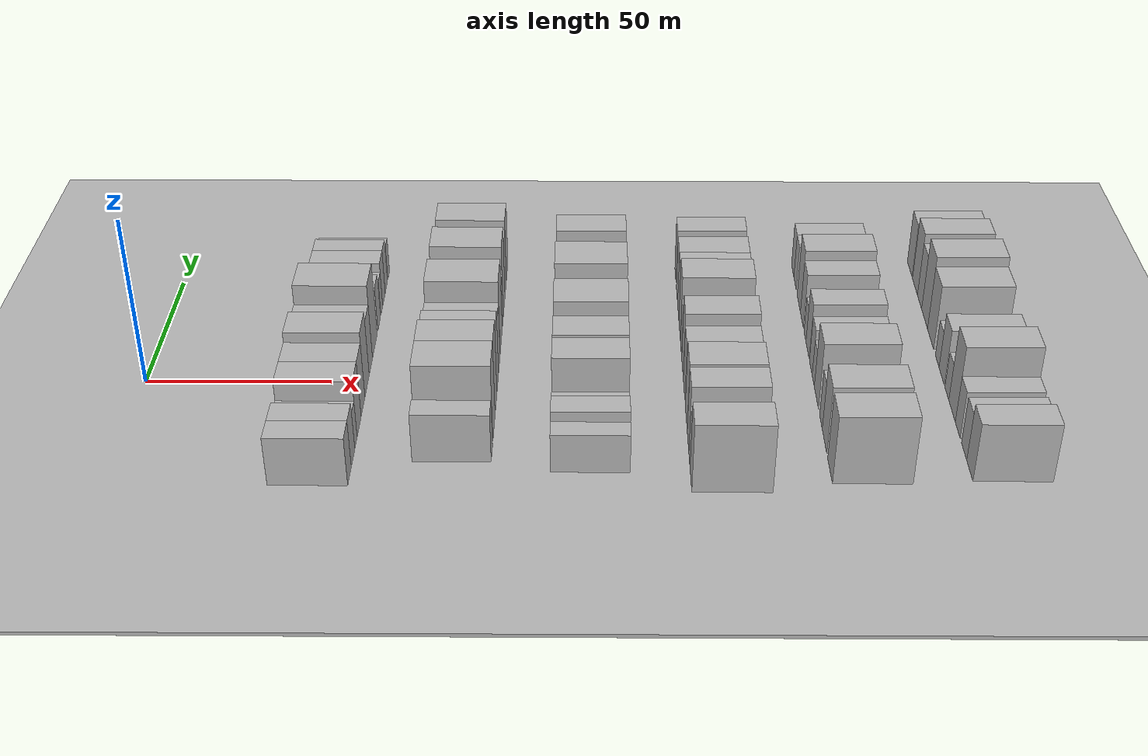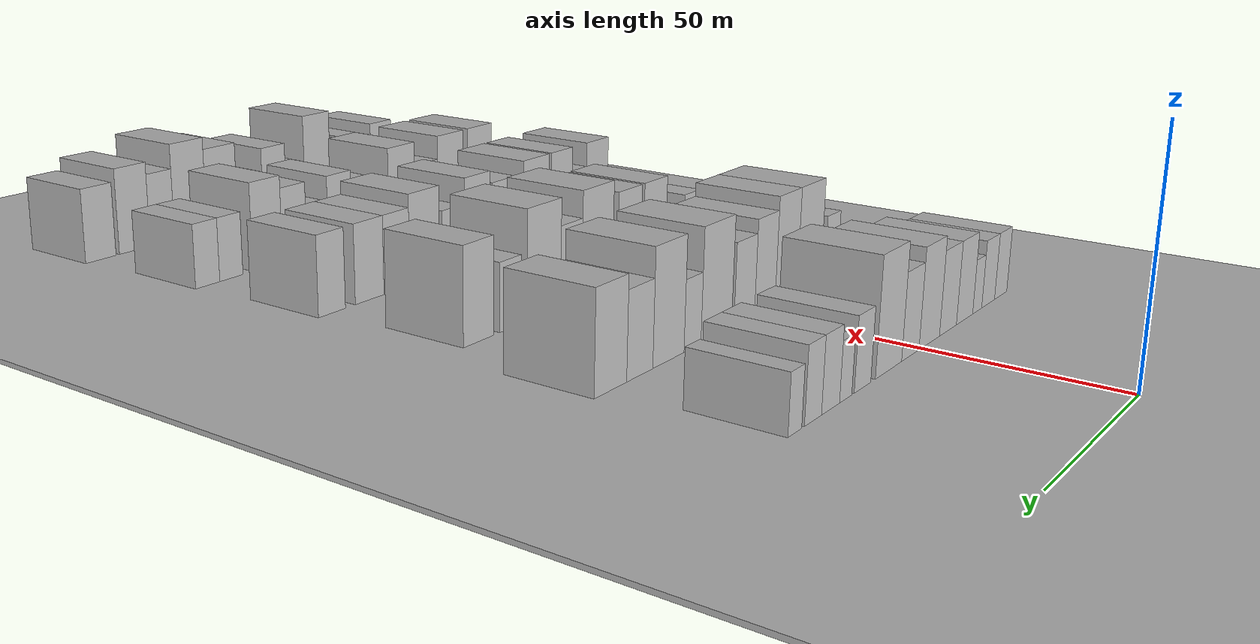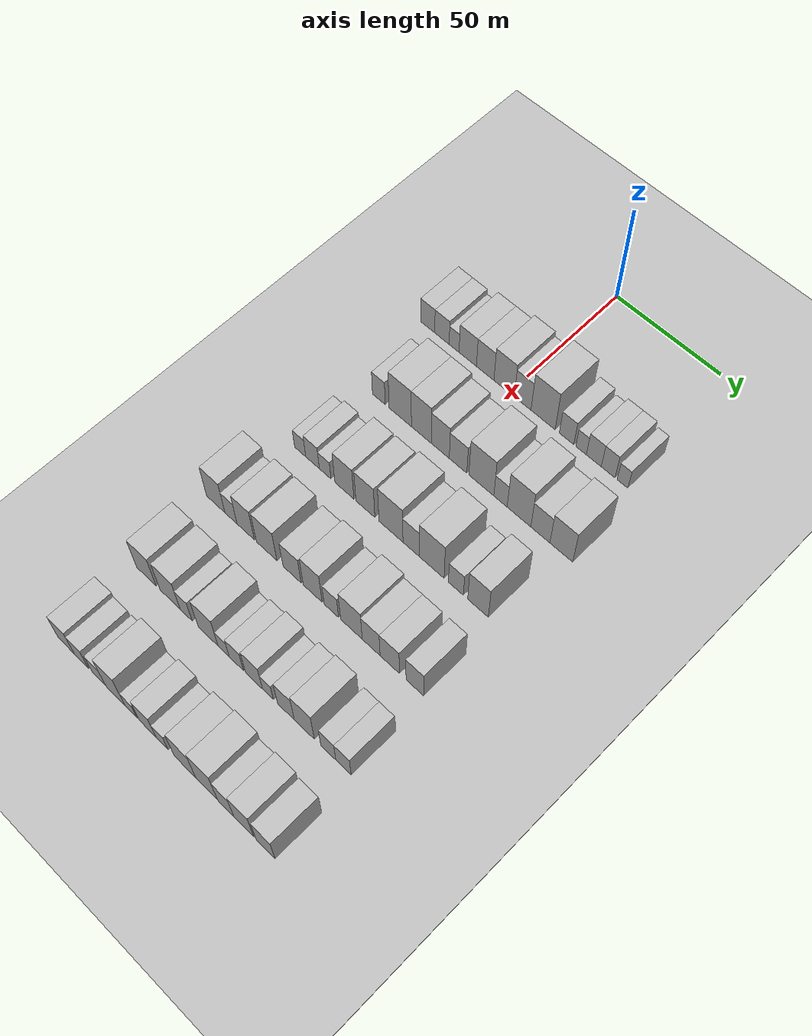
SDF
<sdf version="1.6">
 <world name="default">
  <include><name>ground_plane_1</name><uri>model://HANNAS_ground_plane</uri></include>
  <include>
   <name>ground_plane_2</name>
   <uri>model://HANNAS_ground_plane</uri>
   <pose>100 0 0  0 0 0</pose>
  </include>
  <model name="building_63">
   <static>1</static>
   <pose>50.0000 -41.1256 0 0.000000 0.000000 0.000000</pose>
   <link name="link">
    <pose>0 0 7.50 0 0 0</pose>
    <collision name="collision"><geometry><box><size>20.0000 7.2769 15.0000</size></box></geometry></collision>
    <visual name="visual">
     <cast_shadows>0</cast_shadows>
     <geometry><box><size>20.0000 7.2769 15.0000</size></box></geometry>
     <material>
      <script>
       <uri>model://HANNAS_wall/materials/scripts</uri>
       <uri>model://HANNAS_wall/materials/textures</uri>
       <name>vrc/HANNAS_wall</name>
      </script>
     </material>
    </visual>
   </link>
  </model>
  <model name="building_64">
   <static>1</static>
   <pose>50.0000 -33.7850 0 0.000000 0.000000 0.000000</pose>
   <link name="link">
    <pose>0 0 7.50 0 0 0</pose>
    <collision name="collision"><geometry><box><size>20.0000 7.4044 15.0000</size></box></geometry></collision>
    <visual name="visual">
     <cast_shadows>0</cast_shadows>
     <geometry><box><size>20.0000 7.4044 15.0000</size></box></geometry>
     <material>
      <script>
       <uri>model://HANNAS_wall/materials/scripts</uri>
       <uri>model://HANNAS_wall/materials/textures</uri>
       <name>vrc/HANNAS_wall</name>
      </script>
     </material>
    </visual>
   </link>
  </model>
  <model name="building_65">
   <static>1</static>
   <pose>50.0000 -27.5641 0 0.000000 0.000000 0.000000</pose>
   <link name="link">
    <pose>0 0 6.00 0 0 0</pose>
    <collision name="collision"><geometry><box><size>20.0000 5.0374 12.0000</size></box></geometry></collision>
    <visual name="visual">
     <cast_shadows>0</cast_shadows>
     <geometry><box><size>20.0000 5.0374 12.0000</size></box></geometry>
     <material>
      <script>
       <uri>model://HANNAS_wall/materials/scripts</uri>
       <uri>model://HANNAS_wall/materials/textures</uri>
       <name>vrc/HANNAS_wall</name>
      </script>
     </material>
    </visual>
   </link>
  </model>
  <model name="building_66">
   <static>1</static>
   <pose>50.0000 -20.6608 0 0.000000 0.000000 0.000000</pose>
   <link name="link">
    <pose>0 0 9.00 0 0 0</pose>
    <collision name="collision"><geometry><box><size>20.0000 8.7693 18.0000</size></box></geometry></collision>
    <visual name="visual">
     <cast_shadows>0</cast_shadows>
     <geometry><box><size>20.0000 8.7693 18.0000</size></box></geometry>
     <material>
      <script>
       <uri>model://HANNAS_wall/materials/scripts</uri>
       <uri>model://HANNAS_wall/materials/textures</uri>
       <name>vrc/HANNAS_wall</name>
      </script>
     </material>
    </visual>
   </link>
  </model>
  <model name="building_67">
   <static>1</static>
   <pose>50.0000 -11.9061 0 0.000000 0.000000 0.000000</pose>
   <link name="link">
    <pose>0 0 9.00 0 0 0</pose>
    <collision name="collision"><geometry><box><size>20.0000 8.7401 18.0000</size></box></geometry></collision>
    <visual name="visual">
     <cast_shadows>0</cast_shadows>
     <geometry><box><size>20.0000 8.7401 18.0000</size></box></geometry>
     <material>
      <script>
       <uri>model://HANNAS_wall/materials/scripts</uri>
       <uri>model://HANNAS_wall/materials/textures</uri>
       <name>vrc/HANNAS_wall</name>
      </script>
     </material>
    </visual>
   </link>
  </model>
  <model name="building_68">
   <static>1</static>
   <pose>50.0000 -2.4964 0 0.000000 0.000000 0.000000</pose>
   <link name="link">
    <pose>0 0 10.50 0 0 0</pose>
    <collision name="collision"><geometry><box><size>20.0000 10.0793 21.0000</size></box></geometry></collision>
    <visual name="visual">
     <cast_shadows>0</cast_shadows>
     <geometry><box><size>20.0000 10.0793 21.0000</size></box></geometry>
     <material>
      <script>
       <uri>model://HANNAS_wall/materials/scripts</uri>
       <uri>model://HANNAS_wall/materials/textures</uri>
       <name>vrc/HANNAS_wall</name>
      </script>
     </material>
    </visual>
   </link>
  </model>
  <model name="building_69">
   <static>1</static>
   <pose>50.0000 6.6117 0 0.000000 0.000000 0.000000</pose>
   <link name="link">
    <pose>0 0 9.00 0 0 0</pose>
    <collision name="collision"><geometry><box><size>20.0000 8.1369 18.0000</size></box></geometry></collision>
    <visual name="visual">
     <cast_shadows>0</cast_shadows>
     <geometry><box><size>20.0000 8.1369 18.0000</size></box></geometry>
     <material>
      <script>
       <uri>model://HANNAS_wall/materials/scripts</uri>
       <uri>model://HANNAS_wall/materials/textures</uri>
       <name>vrc/HANNAS_wall</name>
      </script>
     </material>
    </visual>
   </link>
  </model>
  <model name="building_70">
   <static>1</static>
   <pose>50.0000 16.5083 0 0.000000 0.000000 0.000000</pose>
   <link name="link">
    <pose>0 0 12.00 0 0 0</pose>
    <collision name="collision"><geometry><box><size>20.0000 11.6562 24.0000</size></box></geometry></collision>
    <visual name="visual">
     <cast_shadows>0</cast_shadows>
     <geometry><box><size>20.0000 11.6562 24.0000</size></box></geometry>
     <material>
      <script>
       <uri>model://HANNAS_wall/materials/scripts</uri>
       <uri>model://HANNAS_wall/materials/textures</uri>
       <name>vrc/HANNAS_wall</name>
      </script>
     </material>
    </visual>
   </link>
  </model>
  <model name="building_71">
   <static>1</static>
   <pose>50.0000 27.7764 0 0.000000 0.000000 0.000000</pose>
   <link name="link">
    <pose>0 0 7.50 0 0 0</pose>
    <collision name="collision"><geometry><box><size>20.0000 6.8799 15.0000</size></box></geometry></collision>
    <visual name="visual">
     <cast_shadows>0</cast_shadows>
     <geometry><box><size>20.0000 6.8799 15.0000</size></box></geometry>
     <material>
      <script>
       <uri>model://HANNAS_wall/materials/scripts</uri>
       <uri>model://HANNAS_wall/materials/textures</uri>
       <name>vrc/HANNAS_wall</name>
      </script>
     </material>
    </visual>
   </link>
  </model>
  <model name="building_72">
   <static>1</static>
   <pose>50.0000 34.6715 0 0.000000 0.000000 0.000000</pose>
   <link name="link">
    <pose>0 0 6.00 0 0 0</pose>
    <collision name="collision"><geometry><box><size>20.0000 4.9103 12.0000</size></box></geometry></collision>
    <visual name="visual">
     <cast_shadows>0</cast_shadows>
     <geometry><box><size>20.0000 4.9103 12.0000</size></box></geometry>
     <material>
      <script>
       <uri>model://HANNAS_wall/materials/scripts</uri>
       <uri>model://HANNAS_wall/materials/textures</uri>
       <name>vrc/HANNAS_wall</name>
      </script>
     </material>
    </visual>
   </link>
  </model>
  <model name="building_73">
   <static>1</static>
   <pose>50.0000 40.6219 0 0.000000 0.000000 0.000000</pose>
   <link name="link">
    <pose>0 0 7.50 0 0 0</pose>
    <collision name="collision"><geometry><box><size>20.0000 6.9905 15.0000</size></box></geometry></collision>
    <visual name="visual">
     <cast_shadows>0</cast_shadows>
     <geometry><box><size>20.0000 6.9905 15.0000</size></box></geometry>
     <material>
      <script>
       <uri>model://HANNAS_wall/materials/scripts</uri>
       <uri>model://HANNAS_wall/materials/textures</uri>
       <name>vrc/HANNAS_wall</name>
      </script>
     </material>
    </visual>
   </link>
  </model>
  <model name="building_74">
   <static>1</static>
   <pose>50.0000 47.2921 0 0.000000 0.000000 0.000000</pose>
   <link name="link">
    <pose>0 0 7.50 0 0 0</pose>
    <collision name="collision"><geometry><box><size>20.0000 6.3498 15.0000</size></box></geometry></collision>
    <visual name="visual">
     <cast_shadows>0</cast_shadows>
     <geometry><box><size>20.0000 6.3498 15.0000</size></box></geometry>
     <material>
      <script>
       <uri>model://HANNAS_wall/materials/scripts</uri>
       <uri>model://HANNAS_wall/materials/textures</uri>
       <name>vrc/HANNAS_wall</name>
      </script>
     </material>
    </visual>
   </link>
  </model>
  <model name="building_75">
   <static>1</static>
   <pose>50.0000 53.9406 0 0.000000 0.000000 0.000000</pose>
   <link name="link">
    <pose>0 0 6.00 0 0 0</pose>
    <collision name="collision"><geometry><box><size>20.0000 4.9472 12.0000</size></box></geometry></collision>
    <visual name="visual">
     <cast_shadows>0</cast_shadows>
     <geometry><box><size>20.0000 4.9472 12.0000</size></box></geometry>
     <material>
      <script>
       <uri>model://HANNAS_wall/materials/scripts</uri>
       <uri>model://HANNAS_wall/materials/textures</uri>
       <name>vrc/HANNAS_wall</name>
      </script>
     </material>
    </visual>
   </link>
  </model>
  <model name="building_196">
   <static>1</static>
   <pose>85.0000 -31.8181 0 0.000000 0.000000 0.000000</pose>
   <link name="link">
    <pose>0 0 7.50 0 0 0</pose>
    <collision name="collision"><geometry><box><size>20.0000 6.4672 15.0000</size></box></geometry></collision>
    <visual name="visual">
     <cast_shadows>0</cast_shadows>
     <geometry><box><size>20.0000 6.4672 15.0000</size></box></geometry>
     <material>
      <script>
       <uri>model://HANNAS_wall/materials/scripts</uri>
       <uri>model://HANNAS_wall/materials/textures</uri>
       <name>vrc/HANNAS_wall</name>
      </script>
     </material>
    </visual>
   </link>
  </model>
  <model name="building_197">
   <static>1</static>
   <pose>85.0000 -20.9600 0 0.000000 0.000000 0.000000</pose>
   <link name="link">
    <pose>0 0 12.00 0 0 0</pose>
    <collision name="collision"><geometry><box><size>20.0000 11.2489 24.0000</size></box></geometry></collision>
    <visual name="visual">
     <cast_shadows>0</cast_shadows>
     <geometry><box><size>20.0000 11.2489 24.0000</size></box></geometry>
     <material>
      <script>
       <uri>model://HANNAS_wall/materials/scripts</uri>
       <uri>model://HANNAS_wall/materials/textures</uri>
       <name>vrc/HANNAS_wall</name>
      </script>
     </material>
    </visual>
   </link>
  </model>
  <model name="building_198">
   <static>1</static>
   <pose>85.0000 -10.3978 0 0.000000 0.000000 0.000000</pose>
   <link name="link">
    <pose>0 0 12.00 0 0 0</pose>
    <collision name="collision"><geometry><box><size>20.0000 9.8755 24.0000</size></box></geometry></collision>
    <visual name="visual">
     <cast_shadows>0</cast_shadows>
     <geometry><box><size>20.0000 9.8755 24.0000</size></box></geometry>
     <material>
      <script>
       <uri>model://HANNAS_wall/materials/scripts</uri>
       <uri>model://HANNAS_wall/materials/textures</uri>
       <name>vrc/HANNAS_wall</name>
      </script>
     </material>
    </visual>
   </link>
  </model>
  <model name="building_199">
   <static>1</static>
   <pose>85.0000 -1.0228 0 0.000000 0.000000 0.000000</pose>
   <link name="link">
    <pose>0 0 10.50 0 0 0</pose>
    <collision name="collision"><geometry><box><size>20.0000 8.8744 21.0000</size></box></geometry></collision>
    <visual name="visual">
     <cast_shadows>0</cast_shadows>
     <geometry><box><size>20.0000 8.8744 21.0000</size></box></geometry>
     <material>
      <script>
       <uri>model://HANNAS_wall/materials/scripts</uri>
       <uri>model://HANNAS_wall/materials/textures</uri>
       <name>vrc/HANNAS_wall</name>
      </script>
     </material>
    </visual>
   </link>
  </model>
  <model name="building_200">
   <static>1</static>
   <pose>85.0000 7.6800 0 0.000000 0.000000 0.000000</pose>
   <link name="link">
    <pose>0 0 9.00 0 0 0</pose>
    <collision name="collision"><geometry><box><size>20.0000 8.5313 18.0000</size></box></geometry></collision>
    <visual name="visual">
     <cast_shadows>0</cast_shadows>
     <geometry><box><size>20.0000 8.5313 18.0000</size></box></geometry>
     <material>
      <script>
       <uri>model://HANNAS_wall/materials/scripts</uri>
       <uri>model://HANNAS_wall/materials/textures</uri>
       <name>vrc/HANNAS_wall</name>
      </script>
     </material>
    </visual>
   </link>
  </model>
  <model name="building_201">
   <static>1</static>
   <pose>85.0000 18.9229 0 0.000000 0.000000 0.000000</pose>
   <link name="link">
    <pose>0 0 12.00 0 0 0</pose>
    <collision name="collision"><geometry><box><size>20.0000 11.9546 24.0000</size></box></geometry></collision>
    <visual name="visual">
     <cast_shadows>0</cast_shadows>
     <geometry><box><size>20.0000 11.9546 24.0000</size></box></geometry>
     <material>
      <script>
       <uri>model://HANNAS_wall/materials/scripts</uri>
       <uri>model://HANNAS_wall/materials/textures</uri>
       <name>vrc/HANNAS_wall</name>
      </script>
     </material>
    </visual>
   </link>
  </model>
  <model name="building_202">
   <static>1</static>
   <pose>85.0000 28.0525 0 0.000000 0.000000 0.000000</pose>
   <link name="link">
    <pose>0 0 7.50 0 0 0</pose>
    <collision name="collision"><geometry><box><size>20.0000 6.3044 15.0000</size></box></geometry></collision>
    <visual name="visual">
     <cast_shadows>0</cast_shadows>
     <geometry><box><size>20.0000 6.3044 15.0000</size></box></geometry>
     <material>
      <script>
       <uri>model://HANNAS_wall/materials/scripts</uri>
       <uri>model://HANNAS_wall/materials/textures</uri>
       <name>vrc/HANNAS_wall</name>
      </script>
     </material>
    </visual>
   </link>
  </model>
  <model name="building_203">
   <static>1</static>
   <pose>85.0000 36.7662 0 0.000000 0.000000 0.000000</pose>
   <link name="link">
    <pose>0 0 12.00 0 0 0</pose>
    <collision name="collision"><geometry><box><size>20.0000 11.1231 24.0000</size></box></geometry></collision>
    <visual name="visual">
     <cast_shadows>0</cast_shadows>
     <geometry><box><size>20.0000 11.1231 24.0000</size></box></geometry>
     <material>
      <script>
       <uri>model://HANNAS_wall/materials/scripts</uri>
       <uri>model://HANNAS_wall/materials/textures</uri>
       <name>vrc/HANNAS_wall</name>
      </script>
     </material>
    </visual>
   </link>
  </model>
  <model name="building_204">
   <static>1</static>
   <pose>85.0000 46.7369 0 0.000000 0.000000 0.000000</pose>
   <link name="link">
    <pose>0 0 9.00 0 0 0</pose>
    <collision name="collision"><geometry><box><size>20.0000 8.8182 18.0000</size></box></geometry></collision>
    <visual name="visual">
     <cast_shadows>0</cast_shadows>
     <geometry><box><size>20.0000 8.8182 18.0000</size></box></geometry>
     <material>
      <script>
       <uri>model://HANNAS_wall/materials/scripts</uri>
       <uri>model://HANNAS_wall/materials/textures</uri>
       <name>vrc/HANNAS_wall</name>
      </script>
     </material>
    </visual>
   </link>
  </model>
  <model name="building_205">
   <static>1</static>
   <pose>85.0000 56.3601 0 0.000000 0.000000 0.000000</pose>
   <link name="link">
    <pose>0 0 10.50 0 0 0</pose>
    <collision name="collision"><geometry><box><size>20.0000 10.4281 21.0000</size></box></geometry></collision>
    <visual name="visual">
     <cast_shadows>0</cast_shadows>
     <geometry><box><size>20.0000 10.4281 21.0000</size></box></geometry>
     <material>
      <script>
       <uri>model://HANNAS_wall/materials/scripts</uri>
       <uri>model://HANNAS_wall/materials/textures</uri>
       <name>vrc/HANNAS_wall</name>
      </script>
     </material>
    </visual>
   </link>
  </model>
  <model name="building_306">
   <static>1</static>
   <pose>120.0000 -36.2593 0 0.000000 0.000000 0.000000</pose>
   <link name="link">
    <pose>0 0 6.00 0 0 0</pose>
    <collision name="collision"><geometry><box><size>20.0000 5.6819 12.0000</size></box></geometry></collision>
    <visual name="visual">
     <cast_shadows>0</cast_shadows>
     <geometry><box><size>20.0000 5.6819 12.0000</size></box></geometry>
     <material>
      <script>
       <uri>model://HANNAS_wall/materials/scripts</uri>
       <uri>model://HANNAS_wall/materials/textures</uri>
       <name>vrc/HANNAS_wall</name>
      </script>
     </material>
    </visual>
   </link>
  </model>
  <model name="building_307">
   <static>1</static>
   <pose>120.0000 -29.9218 0 0.000000 0.000000 0.000000</pose>
   <link name="link">
    <pose>0 0 7.50 0 0 0</pose>
    <collision name="collision"><geometry><box><size>20.0000 6.9931 15.0000</size></box></geometry></collision>
    <visual name="visual">
     <cast_shadows>0</cast_shadows>
     <geometry><box><size>20.0000 6.9931 15.0000</size></box></geometry>
     <material>
      <script>
       <uri>model://HANNAS_wall/materials/scripts</uri>
       <uri>model://HANNAS_wall/materials/textures</uri>
       <name>vrc/HANNAS_wall</name>
      </script>
     </material>
    </visual>
   </link>
  </model>
  <model name="building_308">
   <static>1</static>
   <pose>120.0000 -23.4989 0 0.000000 0.000000 0.000000</pose>
   <link name="link">
    <pose>0 0 6.00 0 0 0</pose>
    <collision name="collision"><geometry><box><size>20.0000 5.8526 12.0000</size></box></geometry></collision>
    <visual name="visual">
     <cast_shadows>0</cast_shadows>
     <geometry><box><size>20.0000 5.8526 12.0000</size></box></geometry>
     <material>
      <script>
       <uri>model://HANNAS_wall/materials/scripts</uri>
       <uri>model://HANNAS_wall/materials/textures</uri>
       <name>vrc/HANNAS_wall</name>
      </script>
     </material>
    </visual>
   </link>
  </model>
  <model name="building_309">
   <static>1</static>
   <pose>120.0000 -13.8262 0 0.000000 0.000000 0.000000</pose>
   <link name="link">
    <pose>0 0 10.50 0 0 0</pose>
    <collision name="collision"><geometry><box><size>20.0000 9.4929 21.0000</size></box></geometry></collision>
    <visual name="visual">
     <cast_shadows>0</cast_shadows>
     <geometry><box><size>20.0000 9.4929 21.0000</size></box></geometry>
     <material>
      <script>
       <uri>model://HANNAS_wall/materials/scripts</uri>
       <uri>model://HANNAS_wall/materials/textures</uri>
       <name>vrc/HANNAS_wall</name>
      </script>
     </material>
    </visual>
   </link>
  </model>
  <model name="building_310">
   <static>1</static>
   <pose>120.0000 -3.4148 0 0.000000 0.000000 0.000000</pose>
   <link name="link">
    <pose>0 0 10.50 0 0 0</pose>
    <collision name="collision"><geometry><box><size>20.0000 9.3299 21.0000</size></box></geometry></collision>
    <visual name="visual">
     <cast_shadows>0</cast_shadows>
     <geometry><box><size>20.0000 9.3299 21.0000</size></box></geometry>
     <material>
      <script>
       <uri>model://HANNAS_wall/materials/scripts</uri>
       <uri>model://HANNAS_wall/materials/textures</uri>
       <name>vrc/HANNAS_wall</name>
      </script>
     </material>
    </visual>
   </link>
  </model>
  <model name="building_311">
   <static>1</static>
   <pose>120.0000 9.0783 0 0.000000 0.000000 0.000000</pose>
   <link name="link">
    <pose>0 0 12.00 0 0 0</pose>
    <collision name="collision"><geometry><box><size>20.0000 11.6563 24.0000</size></box></geometry></collision>
    <visual name="visual">
     <cast_shadows>0</cast_shadows>
     <geometry><box><size>20.0000 11.6563 24.0000</size></box></geometry>
     <material>
      <script>
       <uri>model://HANNAS_wall/materials/scripts</uri>
       <uri>model://HANNAS_wall/materials/textures</uri>
       <name>vrc/HANNAS_wall</name>
      </script>
     </material>
    </visual>
   </link>
  </model>
  <model name="building_312">
   <static>1</static>
   <pose>120.0000 18.7878 0 0.000000 0.000000 0.000000</pose>
   <link name="link">
    <pose>0 0 9.00 0 0 0</pose>
    <collision name="collision"><geometry><box><size>20.0000 7.7627 18.0000</size></box></geometry></collision>
    <visual name="visual">
     <cast_shadows>0</cast_shadows>
     <geometry><box><size>20.0000 7.7627 18.0000</size></box></geometry>
     <material>
      <script>
       <uri>model://HANNAS_wall/materials/scripts</uri>
       <uri>model://HANNAS_wall/materials/textures</uri>
       <name>vrc/HANNAS_wall</name>
      </script>
     </material>
    </visual>
   </link>
  </model>
  <model name="building_313">
   <static>1</static>
   <pose>120.0000 28.5549 0 0.000000 0.000000 0.000000</pose>
   <link name="link">
    <pose>0 0 12.00 0 0 0</pose>
    <collision name="collision"><geometry><box><size>20.0000 11.7715 24.0000</size></box></geometry></collision>
    <visual name="visual">
     <cast_shadows>0</cast_shadows>
     <geometry><box><size>20.0000 11.7715 24.0000</size></box></geometry>
     <material>
      <script>
       <uri>model://HANNAS_wall/materials/scripts</uri>
       <uri>model://HANNAS_wall/materials/textures</uri>
       <name>vrc/HANNAS_wall</name>
      </script>
     </material>
    </visual>
   </link>
  </model>
  <model name="building_314">
   <static>1</static>
   <pose>120.0000 39.9270 0 0.000000 0.000000 0.000000</pose>
   <link name="link">
    <pose>0 0 7.50 0 0 0</pose>
    <collision name="collision"><geometry><box><size>20.0000 6.9727 15.0000</size></box></geometry></collision>
    <visual name="visual">
     <cast_shadows>0</cast_shadows>
     <geometry><box><size>20.0000 6.9727 15.0000</size></box></geometry>
     <material>
      <script>
       <uri>model://HANNAS_wall/materials/scripts</uri>
       <uri>model://HANNAS_wall/materials/textures</uri>
       <name>vrc/HANNAS_wall</name>
      </script>
     </material>
    </visual>
   </link>
  </model>
  <model name="building_315">
   <static>1</static>
   <pose>120.0000 50.1414 0 0.000000 0.000000 0.000000</pose>
   <link name="link">
    <pose>0 0 10.50 0 0 0</pose>
    <collision name="collision"><geometry><box><size>20.0000 9.4560 21.0000</size></box></geometry></collision>
    <visual name="visual">
     <cast_shadows>0</cast_shadows>
     <geometry><box><size>20.0000 9.4560 21.0000</size></box></geometry>
     <material>
      <script>
       <uri>model://HANNAS_wall/materials/scripts</uri>
       <uri>model://HANNAS_wall/materials/textures</uri>
       <name>vrc/HANNAS_wall</name>
      </script>
     </material>
    </visual>
   </link>
  </model>
  <model name="building_427">
   <static>1</static>
   <pose>155.0000 -42.0144 0 0.000000 0.000000 0.000000</pose>
   <link name="link">
    <pose>0 0 10.50 0 0 0</pose>
    <collision name="collision"><geometry><box><size>20.0000 9.5066 21.0000</size></box></geometry></collision>
    <visual name="visual">
     <cast_shadows>0</cast_shadows>
     <geometry><box><size>20.0000 9.5066 21.0000</size></box></geometry>
     <material>
      <script>
       <uri>model://HANNAS_wall/materials/scripts</uri>
       <uri>model://HANNAS_wall/materials/textures</uri>
       <name>vrc/HANNAS_wall</name>
      </script>
     </material>
    </visual>
   </link>
  </model>
  <model name="building_428">
   <static>1</static>
   <pose>155.0000 -34.1375 0 0.000000 0.000000 0.000000</pose>
   <link name="link">
    <pose>0 0 7.50 0 0 0</pose>
    <collision name="collision"><geometry><box><size>20.0000 6.2473 15.0000</size></box></geometry></collision>
    <visual name="visual">
     <cast_shadows>0</cast_shadows>
     <geometry><box><size>20.0000 6.2473 15.0000</size></box></geometry>
     <material>
      <script>
       <uri>model://HANNAS_wall/materials/scripts</uri>
       <uri>model://HANNAS_wall/materials/textures</uri>
       <name>vrc/HANNAS_wall</name>
      </script>
     </material>
    </visual>
   </link>
  </model>
  <model name="building_429">
   <static>1</static>
   <pose>155.0000 -26.5983 0 0.000000 0.000000 0.000000</pose>
   <link name="link">
    <pose>0 0 10.50 0 0 0</pose>
    <collision name="collision"><geometry><box><size>20.0000 8.8310 21.0000</size></box></geometry></collision>
    <visual name="visual">
     <cast_shadows>0</cast_shadows>
     <geometry><box><size>20.0000 8.8310 21.0000</size></box></geometry>
     <material>
      <script>
       <uri>model://HANNAS_wall/materials/scripts</uri>
       <uri>model://HANNAS_wall/materials/textures</uri>
       <name>vrc/HANNAS_wall</name>
      </script>
     </material>
    </visual>
   </link>
  </model>
  <model name="building_430">
   <static>1</static>
   <pose>155.0000 -16.0215 0 0.000000 0.000000 0.000000</pose>
   <link name="link">
    <pose>0 0 10.50 0 0 0</pose>
    <collision name="collision"><geometry><box><size>20.0000 10.3224 21.0000</size></box></geometry></collision>
    <visual name="visual">
     <cast_shadows>0</cast_shadows>
     <geometry><box><size>20.0000 10.3224 21.0000</size></box></geometry>
     <material>
      <script>
       <uri>model://HANNAS_wall/materials/scripts</uri>
       <uri>model://HANNAS_wall/materials/textures</uri>
       <name>vrc/HANNAS_wall</name>
      </script>
     </material>
    </visual>
   </link>
  </model>
  <model name="building_431">
   <static>1</static>
   <pose>155.0000 -3.3795 0 0.000000 0.000000 0.000000</pose>
   <link name="link">
    <pose>0 0 9.00 0 0 0</pose>
    <collision name="collision"><geometry><box><size>20.0000 8.9617 18.0000</size></box></geometry></collision>
    <visual name="visual">
     <cast_shadows>0</cast_shadows>
     <geometry><box><size>20.0000 8.9617 18.0000</size></box></geometry>
     <material>
      <script>
       <uri>model://HANNAS_wall/materials/scripts</uri>
       <uri>model://HANNAS_wall/materials/textures</uri>
       <name>vrc/HANNAS_wall</name>
      </script>
     </material>
    </visual>
   </link>
  </model>
  <model name="building_432">
   <static>1</static>
   <pose>155.0000 6.6852 0 0.000000 0.000000 0.000000</pose>
   <link name="link">
    <pose>0 0 10.50 0 0 0</pose>
    <collision name="collision"><geometry><box><size>20.0000 9.1678 21.0000</size></box></geometry></collision>
    <visual name="visual">
     <cast_shadows>0</cast_shadows>
     <geometry><box><size>20.0000 9.1678 21.0000</size></box></geometry>
     <material>
      <script>
       <uri>model://HANNAS_wall/materials/scripts</uri>
       <uri>model://HANNAS_wall/materials/textures</uri>
       <name>vrc/HANNAS_wall</name>
      </script>
     </material>
    </visual>
   </link>
  </model>
  <model name="building_433">
   <static>1</static>
   <pose>155.0000 15.7354 0 0.000000 0.000000 0.000000</pose>
   <link name="link">
    <pose>0 0 7.50 0 0 0</pose>
    <collision name="collision"><geometry><box><size>20.0000 6.9326 15.0000</size></box></geometry></collision>
    <visual name="visual">
     <cast_shadows>0</cast_shadows>
     <geometry><box><size>20.0000 6.9326 15.0000</size></box></geometry>
     <material>
      <script>
       <uri>model://HANNAS_wall/materials/scripts</uri>
       <uri>model://HANNAS_wall/materials/textures</uri>
       <name>vrc/HANNAS_wall</name>
      </script>
     </material>
    </visual>
   </link>
  </model>
  <model name="building_434">
   <static>1</static>
   <pose>155.0000 25.3060 0 0.000000 0.000000 0.000000</pose>
   <link name="link">
    <pose>0 0 10.50 0 0 0</pose>
    <collision name="collision"><geometry><box><size>20.0000 10.2085 21.0000</size></box></geometry></collision>
    <visual name="visual">
     <cast_shadows>0</cast_shadows>
     <geometry><box><size>20.0000 10.2085 21.0000</size></box></geometry>
     <material>
      <script>
       <uri>model://HANNAS_wall/materials/scripts</uri>
       <uri>model://HANNAS_wall/materials/textures</uri>
       <name>vrc/HANNAS_wall</name>
      </script>
     </material>
    </visual>
   </link>
  </model>
  <model name="building_435">
   <static>1</static>
   <pose>155.0000 34.6015 0 0.000000 0.000000 0.000000</pose>
   <link name="link">
    <pose>0 0 9.00 0 0 0</pose>
    <collision name="collision"><geometry><box><size>20.0000 8.3826 18.0000</size></box></geometry></collision>
    <visual name="visual">
     <cast_shadows>0</cast_shadows>
     <geometry><box><size>20.0000 8.3826 18.0000</size></box></geometry>
     <material>
      <script>
       <uri>model://HANNAS_wall/materials/scripts</uri>
       <uri>model://HANNAS_wall/materials/textures</uri>
       <name>vrc/HANNAS_wall</name>
      </script>
     </material>
    </visual>
   </link>
  </model>
  <model name="building_436">
   <static>1</static>
   <pose>155.0000 43.2703 0 0.000000 0.000000 0.000000</pose>
   <link name="link">
    <pose>0 0 9.00 0 0 0</pose>
    <collision name="collision"><geometry><box><size>20.0000 8.9550 18.0000</size></box></geometry></collision>
    <visual name="visual">
     <cast_shadows>0</cast_shadows>
     <geometry><box><size>20.0000 8.9550 18.0000</size></box></geometry>
     <material>
      <script>
       <uri>model://HANNAS_wall/materials/scripts</uri>
       <uri>model://HANNAS_wall/materials/textures</uri>
       <name>vrc/HANNAS_wall</name>
      </script>
     </material>
    </visual>
   </link>
  </model>
  <model name="building_437">
   <static>1</static>
   <pose>155.0000 54.7390 0 0.000000 0.000000 0.000000</pose>
   <link name="link">
    <pose>0 0 9.00 0 0 0</pose>
    <collision name="collision"><geometry><box><size>20.0000 7.9823 18.0000</size></box></geometry></collision>
    <visual name="visual">
     <cast_shadows>0</cast_shadows>
     <geometry><box><size>20.0000 7.9823 18.0000</size></box></geometry>
     <material>
      <script>
       <uri>model://HANNAS_wall/materials/scripts</uri>
       <uri>model://HANNAS_wall/materials/textures</uri>
       <name>vrc/HANNAS_wall</name>
      </script>
     </material>
    </visual>
   </link>
  </model>
  <model name="building_545">
   <static>1</static>
   <pose>190.0000 -38.1544 0 0.000000 0.000000 0.000000</pose>
   <link name="link">
    <pose>0 0 10.50 0 0 0</pose>
    <collision name="collision"><geometry><box><size>20.0000 10.1459 21.0000</size></box></geometry></collision>
    <visual name="visual">
     <cast_shadows>0</cast_shadows>
     <geometry><box><size>20.0000 10.1459 21.0000</size></box></geometry>
     <material>
      <script>
       <uri>model://HANNAS_wall/materials/scripts</uri>
       <uri>model://HANNAS_wall/materials/textures</uri>
       <name>vrc/HANNAS_wall</name>
      </script>
     </material>
    </visual>
   </link>
  </model>
  <model name="building_546">
   <static>1</static>
   <pose>190.0000 -25.9553 0 0.000000 0.000000 0.000000</pose>
   <link name="link">
    <pose>0 0 10.50 0 0 0</pose>
    <collision name="collision"><geometry><box><size>20.0000 10.2524 21.0000</size></box></geometry></collision>
    <visual name="visual">
     <cast_shadows>0</cast_shadows>
     <geometry><box><size>20.0000 10.2524 21.0000</size></box></geometry>
     <material>
      <script>
       <uri>model://HANNAS_wall/materials/scripts</uri>
       <uri>model://HANNAS_wall/materials/textures</uri>
       <name>vrc/HANNAS_wall</name>
      </script>
     </material>
    </visual>
   </link>
  </model>
  <model name="building_547">
   <static>1</static>
   <pose>190.0000 -17.8192 0 0.000000 0.000000 0.000000</pose>
   <link name="link">
    <pose>0 0 7.50 0 0 0</pose>
    <collision name="collision"><geometry><box><size>20.0000 6.0199 15.0000</size></box></geometry></collision>
    <visual name="visual">
     <cast_shadows>0</cast_shadows>
     <geometry><box><size>20.0000 6.0199 15.0000</size></box></geometry>
     <material>
      <script>
       <uri>model://HANNAS_wall/materials/scripts</uri>
       <uri>model://HANNAS_wall/materials/textures</uri>
       <name>vrc/HANNAS_wall</name>
      </script>
     </material>
    </visual>
   </link>
  </model>
  <model name="building_548">
   <static>1</static>
   <pose>190.0000 -6.8556 0 0.000000 0.000000 0.000000</pose>
   <link name="link">
    <pose>0 0 10.50 0 0 0</pose>
    <collision name="collision"><geometry><box><size>20.0000 9.9073 21.0000</size></box></geometry></collision>
    <visual name="visual">
     <cast_shadows>0</cast_shadows>
     <geometry><box><size>20.0000 9.9073 21.0000</size></box></geometry>
     <material>
      <script>
       <uri>model://HANNAS_wall/materials/scripts</uri>
       <uri>model://HANNAS_wall/materials/textures</uri>
       <name>vrc/HANNAS_wall</name>
      </script>
     </material>
    </visual>
   </link>
  </model>
  <model name="building_549">
   <static>1</static>
   <pose>190.0000 0.8164 0 0.000000 0.000000 0.000000</pose>
   <link name="link">
    <pose>0 0 6.00 0 0 0</pose>
    <collision name="collision"><geometry><box><size>20.0000 5.4366 12.0000</size></box></geometry></collision>
    <visual name="visual">
     <cast_shadows>0</cast_shadows>
     <geometry><box><size>20.0000 5.4366 12.0000</size></box></geometry>
     <material>
      <script>
       <uri>model://HANNAS_wall/materials/scripts</uri>
       <uri>model://HANNAS_wall/materials/textures</uri>
       <name>vrc/HANNAS_wall</name>
      </script>
     </material>
    </visual>
   </link>
  </model>
  <model name="building_550">
   <static>1</static>
   <pose>190.0000 7.0051 0 0.000000 0.000000 0.000000</pose>
   <link name="link">
    <pose>0 0 7.50 0 0 0</pose>
    <collision name="collision"><geometry><box><size>20.0000 6.9408 15.0000</size></box></geometry></collision>
    <visual name="visual">
     <cast_shadows>0</cast_shadows>
     <geometry><box><size>20.0000 6.9408 15.0000</size></box></geometry>
     <material>
      <script>
       <uri>model://HANNAS_wall/materials/scripts</uri>
       <uri>model://HANNAS_wall/materials/textures</uri>
       <name>vrc/HANNAS_wall</name>
      </script>
     </material>
    </visual>
   </link>
  </model>
  <model name="building_551">
   <static>1</static>
   <pose>190.0000 15.5288 0 0.000000 0.000000 0.000000</pose>
   <link name="link">
    <pose>0 0 9.00 0 0 0</pose>
    <collision name="collision"><geometry><box><size>20.0000 8.1067 18.0000</size></box></geometry></collision>
    <visual name="visual">
     <cast_shadows>0</cast_shadows>
     <geometry><box><size>20.0000 8.1067 18.0000</size></box></geometry>
     <material>
      <script>
       <uri>model://HANNAS_wall/materials/scripts</uri>
       <uri>model://HANNAS_wall/materials/textures</uri>
       <name>vrc/HANNAS_wall</name>
      </script>
     </material>
    </visual>
   </link>
  </model>
  <model name="building_552">
   <static>1</static>
   <pose>190.0000 22.1745 0 0.000000 0.000000 0.000000</pose>
   <link name="link">
    <pose>0 0 6.00 0 0 0</pose>
    <collision name="collision"><geometry><box><size>20.0000 5.1846 12.0000</size></box></geometry></collision>
    <visual name="visual">
     <cast_shadows>0</cast_shadows>
     <geometry><box><size>20.0000 5.1846 12.0000</size></box></geometry>
     <material>
      <script>
       <uri>model://HANNAS_wall/materials/scripts</uri>
       <uri>model://HANNAS_wall/materials/textures</uri>
       <name>vrc/HANNAS_wall</name>
      </script>
     </material>
    </visual>
   </link>
  </model>
  <model name="building_553">
   <static>1</static>
   <pose>190.0000 30.7167 0 0.000000 0.000000 0.000000</pose>
   <link name="link">
    <pose>0 0 9.00 0 0 0</pose>
    <collision name="collision"><geometry><box><size>20.0000 7.8999 18.0000</size></box></geometry></collision>
    <visual name="visual">
     <cast_shadows>0</cast_shadows>
     <geometry><box><size>20.0000 7.8999 18.0000</size></box></geometry>
     <material>
      <script>
       <uri>model://HANNAS_wall/materials/scripts</uri>
       <uri>model://HANNAS_wall/materials/textures</uri>
       <name>vrc/HANNAS_wall</name>
      </script>
     </material>
    </visual>
   </link>
  </model>
  <model name="building_554">
   <static>1</static>
   <pose>190.0000 39.3215 0 0.000000 0.000000 0.000000</pose>
   <link name="link">
    <pose>0 0 10.50 0 0 0</pose>
    <collision name="collision"><geometry><box><size>20.0000 9.3097 21.0000</size></box></geometry></collision>
    <visual name="visual">
     <cast_shadows>0</cast_shadows>
     <geometry><box><size>20.0000 9.3097 21.0000</size></box></geometry>
     <material>
      <script>
       <uri>model://HANNAS_wall/materials/scripts</uri>
       <uri>model://HANNAS_wall/materials/textures</uri>
       <name>vrc/HANNAS_wall</name>
      </script>
     </material>
    </visual>
   </link>
  </model>
  <model name="building_555">
   <static>1</static>
   <pose>190.0000 50.4045 0 0.000000 0.000000 0.000000</pose>
   <link name="link">
    <pose>0 0 7.50 0 0 0</pose>
    <collision name="collision"><geometry><box><size>20.0000 6.8563 15.0000</size></box></geometry></collision>
    <visual name="visual">
     <cast_shadows>0</cast_shadows>
     <geometry><box><size>20.0000 6.8563 15.0000</size></box></geometry>
     <material>
      <script>
       <uri>model://HANNAS_wall/materials/scripts</uri>
       <uri>model://HANNAS_wall/materials/textures</uri>
       <name>vrc/HANNAS_wall</name>
      </script>
     </material>
    </visual>
   </link>
  </model>
  <model name="building_556">
   <static>1</static>
   <pose>190.0000 57.3076 0 0.000000 0.000000 0.000000</pose>
   <link name="link">
    <pose>0 0 7.50 0 0 0</pose>
    <collision name="collision"><geometry><box><size>20.0000 6.9498 15.0000</size></box></geometry></collision>
    <visual name="visual">
     <cast_shadows>0</cast_shadows>
     <geometry><box><size>20.0000 6.9498 15.0000</size></box></geometry>
     <material>
      <script>
       <uri>model://HANNAS_wall/materials/scripts</uri>
       <uri>model://HANNAS_wall/materials/textures</uri>
       <name>vrc/HANNAS_wall</name>
      </script>
     </material>
    </visual>
   </link>
  </model>
  <model name="building_680">
   <static>1</static>
   <pose>225.0000 -37.8621 0 0.000000 0.000000 0.000000</pose>
   <link name="link">
    <pose>0 0 9.00 0 0 0</pose>
    <collision name="collision"><geometry><box><size>20.0000 8.4353 18.0000</size></box></geometry></collision>
    <visual name="visual">
     <cast_shadows>0</cast_shadows>
     <geometry><box><size>20.0000 8.4353 18.0000</size></box></geometry>
     <material>
      <script>
       <uri>model://HANNAS_wall/materials/scripts</uri>
       <uri>model://HANNAS_wall/materials/textures</uri>
       <name>vrc/HANNAS_wall</name>
      </script>
     </material>
    </visual>
   </link>
  </model>
  <model name="building_681">
   <static>1</static>
   <pose>225.0000 -30.0310 0 0.000000 0.000000 0.000000</pose>
   <link name="link">
    <pose>0 0 7.50 0 0 0</pose>
    <collision name="collision"><geometry><box><size>20.0000 7.2269 15.0000</size></box></geometry></collision>
    <visual name="visual">
     <cast_shadows>0</cast_shadows>
     <geometry><box><size>20.0000 7.2269 15.0000</size></box></geometry>
     <material>
      <script>
       <uri>model://HANNAS_wall/materials/scripts</uri>
       <uri>model://HANNAS_wall/materials/textures</uri>
       <name>vrc/HANNAS_wall</name>
      </script>
     </material>
    </visual>
   </link>
  </model>
  <model name="building_682">
   <static>1</static>
   <pose>225.0000 -20.9639 0 0.000000 0.000000 0.000000</pose>
   <link name="link">
    <pose>0 0 7.50 0 0 0</pose>
    <collision name="collision"><geometry><box><size>20.0000 6.9073 15.0000</size></box></geometry></collision>
    <visual name="visual">
     <cast_shadows>0</cast_shadows>
     <geometry><box><size>20.0000 6.9073 15.0000</size></box></geometry>
     <material>
      <script>
       <uri>model://HANNAS_wall/materials/scripts</uri>
       <uri>model://HANNAS_wall/materials/textures</uri>
       <name>vrc/HANNAS_wall</name>
      </script>
     </material>
    </visual>
   </link>
  </model>
  <model name="building_683">
   <static>1</static>
   <pose>225.0000 -12.6705 0 0.000000 0.000000 0.000000</pose>
   <link name="link">
    <pose>0 0 12.00 0 0 0</pose>
    <collision name="collision"><geometry><box><size>20.0000 9.6794 24.0000</size></box></geometry></collision>
    <visual name="visual">
     <cast_shadows>0</cast_shadows>
     <geometry><box><size>20.0000 9.6794 24.0000</size></box></geometry>
     <material>
      <script>
       <uri>model://HANNAS_wall/materials/scripts</uri>
       <uri>model://HANNAS_wall/materials/textures</uri>
       <name>vrc/HANNAS_wall</name>
      </script>
     </material>
    </visual>
   </link>
  </model>
  <model name="building_684">
   <static>1</static>
   <pose>225.0000 -4.8819 0 0.000000 0.000000 0.000000</pose>
   <link name="link">
    <pose>0 0 6.00 0 0 0</pose>
    <collision name="collision"><geometry><box><size>20.0000 5.8977 12.0000</size></box></geometry></collision>
    <visual name="visual">
     <cast_shadows>0</cast_shadows>
     <geometry><box><size>20.0000 5.8977 12.0000</size></box></geometry>
     <material>
      <script>
       <uri>model://HANNAS_wall/materials/scripts</uri>
       <uri>model://HANNAS_wall/materials/textures</uri>
       <name>vrc/HANNAS_wall</name>
      </script>
     </material>
    </visual>
   </link>
  </model>
  <model name="building_685">
   <static>1</static>
   <pose>225.0000 3.2091 0 0.000000 0.000000 0.000000</pose>
   <link name="link">
    <pose>0 0 9.00 0 0 0</pose>
    <collision name="collision"><geometry><box><size>20.0000 8.2844 18.0000</size></box></geometry></collision>
    <visual name="visual">
     <cast_shadows>0</cast_shadows>
     <geometry><box><size>20.0000 8.2844 18.0000</size></box></geometry>
     <material>
      <script>
       <uri>model://HANNAS_wall/materials/scripts</uri>
       <uri>model://HANNAS_wall/materials/textures</uri>
       <name>vrc/HANNAS_wall</name>
      </script>
     </material>
    </visual>
   </link>
  </model>
  <model name="building_686">
   <static>1</static>
   <pose>225.0000 10.2582 0 0.000000 0.000000 0.000000</pose>
   <link name="link">
    <pose>0 0 6.00 0 0 0</pose>
    <collision name="collision"><geometry><box><size>20.0000 5.8137 12.0000</size></box></geometry></collision>
    <visual name="visual">
     <cast_shadows>0</cast_shadows>
     <geometry><box><size>20.0000 5.8137 12.0000</size></box></geometry>
     <material>
      <script>
       <uri>model://HANNAS_wall/materials/scripts</uri>
       <uri>model://HANNAS_wall/materials/textures</uri>
       <name>vrc/HANNAS_wall</name>
      </script>
     </material>
    </visual>
   </link>
  </model>
  <model name="building_687">
   <static>1</static>
   <pose>225.0000 21.2880 0 0.000000 0.000000 0.000000</pose>
   <link name="link">
    <pose>0 0 10.50 0 0 0</pose>
    <collision name="collision"><geometry><box><size>20.0000 10.2459 21.0000</size></box></geometry></collision>
    <visual name="visual">
     <cast_shadows>0</cast_shadows>
     <geometry><box><size>20.0000 10.2459 21.0000</size></box></geometry>
     <material>
      <script>
       <uri>model://HANNAS_wall/materials/scripts</uri>
       <uri>model://HANNAS_wall/materials/textures</uri>
       <name>vrc/HANNAS_wall</name>
      </script>
     </material>
    </visual>
   </link>
  </model>
  <model name="building_688">
   <static>1</static>
   <pose>225.0000 31.5577 0 0.000000 0.000000 0.000000</pose>
   <link name="link">
    <pose>0 0 12.00 0 0 0</pose>
    <collision name="collision"><geometry><box><size>20.0000 10.2937 24.0000</size></box></geometry></collision>
    <visual name="visual">
     <cast_shadows>0</cast_shadows>
     <geometry><box><size>20.0000 10.2937 24.0000</size></box></geometry>
     <material>
      <script>
       <uri>model://HANNAS_wall/materials/scripts</uri>
       <uri>model://HANNAS_wall/materials/textures</uri>
       <name>vrc/HANNAS_wall</name>
      </script>
     </material>
    </visual>
   </link>
  </model>
  <model name="building_689">
   <static>1</static>
   <pose>225.0000 40.4598 0 0.000000 0.000000 0.000000</pose>
   <link name="link">
    <pose>0 0 9.00 0 0 0</pose>
    <collision name="collision"><geometry><box><size>20.0000 7.5104 18.0000</size></box></geometry></collision>
    <visual name="visual">
     <cast_shadows>0</cast_shadows>
     <geometry><box><size>20.0000 7.5104 18.0000</size></box></geometry>
     <material>
      <script>
       <uri>model://HANNAS_wall/materials/scripts</uri>
       <uri>model://HANNAS_wall/materials/textures</uri>
       <name>vrc/HANNAS_wall</name>
      </script>
     </material>
    </visual>
   </link>
  </model>
  <model name="building_690">
   <static>1</static>
   <pose>225.0000 48.7996 0 0.000000 0.000000 0.000000</pose>
   <link name="link">
    <pose>0 0 10.50 0 0 0</pose>
    <collision name="collision"><geometry><box><size>20.0000 9.1691 21.0000</size></box></geometry></collision>
    <visual name="visual">
     <cast_shadows>0</cast_shadows>
     <geometry><box><size>20.0000 9.1691 21.0000</size></box></geometry>
     <material>
      <script>
       <uri>model://HANNAS_wall/materials/scripts</uri>
       <uri>model://HANNAS_wall/materials/textures</uri>
       <name>vrc/HANNAS_wall</name>
      </script>
     </material>
    </visual>
   </link>
  </model>
  <model name="building_691">
   <static>1</static>
   <pose>225.0000 58.6890 0 0.000000 0.000000 0.000000</pose>
   <link name="link">
    <pose>0 0 9.00 0 0 0</pose>
    <collision name="collision"><geometry><box><size>20.0000 8.6098 18.0000</size></box></geometry></collision>
    <visual name="visual">
     <cast_shadows>0</cast_shadows>
     <geometry><box><size>20.0000 8.6098 18.0000</size></box></geometry>
     <material>
      <script>
       <uri>model://HANNAS_wall/materials/scripts</uri>
       <uri>model://HANNAS_wall/materials/textures</uri>
       <name>vrc/HANNAS_wall</name>
      </script>
     </material>
    </visual>
   </link>
  </model>
 </world>
</sdf>
